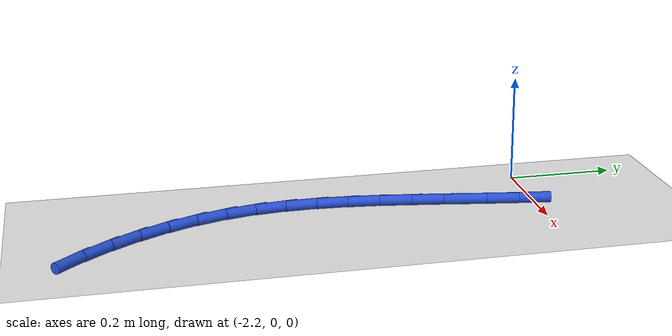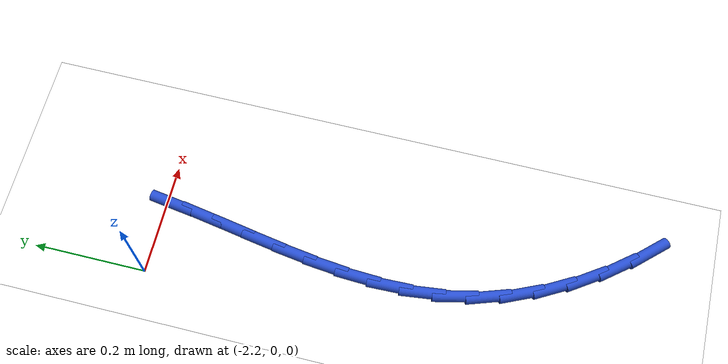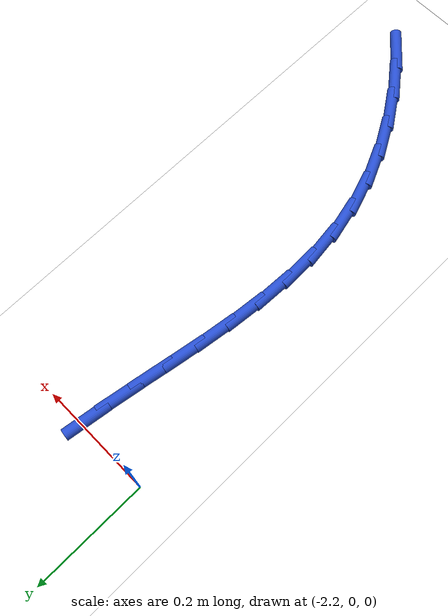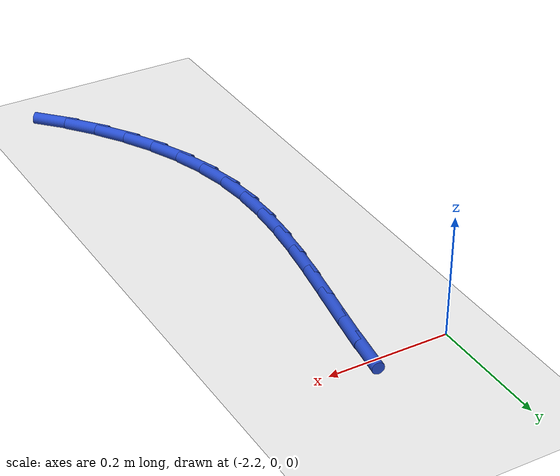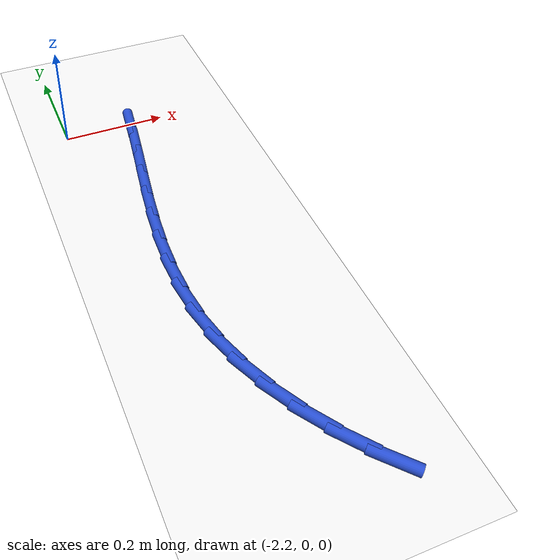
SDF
<sdf version="1.6">
 <world name="default">
  <model name="ground_plane">
   <static>1</static>
   <link name="link">
    <collision name="collision">
     <geometry><plane><normal>0 0 1</normal><size>100 100</size></plane></geometry>
     <surface><friction><ode><mu>100</mu><mu2>50</mu2></ode></friction></surface>
    </collision>
    <visual name="visual">
     <cast_shadows>0</cast_shadows>
     <geometry><plane><normal>0 0 1</normal><size>100 100</size></plane></geometry>
     <material>
      <script><uri>file://media/materials/scripts/gazebo.material</uri><name>Gazebo/WhiteGlow</name></script>
     </material>
    </visual>
   </link>
  </model>
  <model name="line">
   <link name="link_60">
    <pose>-2.0692747454241815 -0.010553672503859971 0.01 0 1.57 1.421763428143317</pose>
    <collision name="collision">
     <geometry><cylinder><radius>0.01</radius><length>0.08</length></cylinder></geometry>
    </collision>
    <visual name="visual">
     <material>
      <script><name>Gazebo/Blue</name><uri>file://media/materials/scripts/gazebo.material</uri></script>
     </material>
     <geometry><cylinder><radius>0.01</radius><length>0.08</length></cylinder></geometry>
    </visual>
   </link>
   <link name="link_61">
    <pose>-2.0781058791949687 -0.06937058229862705 0.01 0 1.57 1.4016909323857312</pose>
    <collision name="collision">
     <geometry><cylinder><radius>0.01</radius><length>0.08</length></cylinder></geometry>
    </collision>
    <visual name="visual">
     <material>
      <script><name>Gazebo/Blue</name><uri>file://media/materials/scripts/gazebo.material</uri></script>
     </material>
     <geometry><cylinder><radius>0.01</radius><length>0.08</length></cylinder></geometry>
    </visual>
   </link>
   <link name="link_62">
    <pose>-2.0881404227545044 -0.12814286068216074 0.01 0 1.57 1.3963773440387126</pose>
    <collision name="collision">
     <geometry><cylinder><radius>0.01</radius><length>0.08</length></cylinder></geometry>
    </collision>
    <visual name="visual">
     <material>
      <script><name>Gazebo/Blue</name><uri>file://media/materials/scripts/gazebo.material</uri></script>
     </material>
     <geometry><cylinder><radius>0.01</radius><length>0.08</length></cylinder></geometry>
    </visual>
   </link>
   <link name="link_63">
    <pose>-2.098472211657338 -0.1867764134649903 0.01 0 1.57 1.4058240153308528</pose>
    <collision name="collision">
     <geometry><cylinder><radius>0.01</radius><length>0.08</length></cylinder></geometry>
    </collision>
    <visual name="visual">
     <material>
      <script><name>Gazebo/Blue</name><uri>file://media/materials/scripts/gazebo.material</uri></script>
     </material>
     <geometry><cylinder><radius>0.01</radius><length>0.08</length></cylinder></geometry>
    </visual>
   </link>
   <link name="link_64">
    <pose>-2.108195081458019 -0.24517714645764252 0.01 0 1.57 1.4303925882408393</pose>
    <collision name="collision">
     <geometry><cylinder><radius>0.01</radius><length>0.08</length></cylinder></geometry>
    </collision>
    <visual name="visual">
     <material>
      <script><name>Gazebo/Blue</name><uri>file://media/materials/scripts/gazebo.material</uri></script>
     </material>
     <geometry><cylinder><radius>0.01</radius><length>0.08</length></cylinder></geometry>
    </visual>
   </link>
   <link name="link_65">
    <pose>-2.1164028677110958 -0.3032509654706466 0.01 0 1.57 1.4707626281073156</pose>
    <collision name="collision">
     <geometry><cylinder><radius>0.01</radius><length>0.08</length></cylinder></geometry>
    </collision>
    <visual name="visual">
     <material>
      <script><name>Gazebo/Blue</name><uri>file://media/materials/scripts/gazebo.material</uri></script>
     </material>
     <geometry><cylinder><radius>0.01</radius><length>0.08</length></cylinder></geometry>
    </visual>
   </link>
   <link name="link_66">
    <pose>-2.122189405971118 -0.36090377631453185 0.01 0 1.57 1.5277842913138713</pose>
    <collision name="collision">
     <geometry><cylinder><radius>0.01</radius><length>0.08</length></cylinder></geometry>
    </collision>
    <visual name="visual">
     <material>
      <script><name>Gazebo/Blue</name><uri>file://media/materials/scripts/gazebo.material</uri></script>
     </material>
     <geometry><cylinder><radius>0.01</radius><length>0.08</length></cylinder></geometry>
    </visual>
   </link>
   <link name="link_67">
    <pose>-2.1246485317926362 -0.41804148479982495 0.01 0 1.57 -1.5394162581486277</pose>
    <collision name="collision">
     <geometry><cylinder><radius>0.01</radius><length>0.08</length></cylinder></geometry>
    </collision>
    <visual name="visual">
     <material>
      <script><name>Gazebo/Blue</name><uri>file://media/materials/scripts/gazebo.material</uri></script>
     </material>
     <geometry><cylinder><radius>0.01</radius><length>0.08</length></cylinder></geometry>
    </visual>
   </link>
   <link name="link_68">
    <pose>-2.1228740807301976 -0.4745699967370553 0.01 0 1.57 -1.4475695876806087</pose>
    <collision name="collision">
     <geometry><cylinder><radius>0.01</radius><length>0.08</length></cylinder></geometry>
    </collision>
    <visual name="visual">
     <material>
      <script><name>Gazebo/Blue</name><uri>file://media/materials/scripts/gazebo.material</uri></script>
     </material>
     <geometry><cylinder><radius>0.01</radius><length>0.08</length></cylinder></geometry>
    </visual>
   </link>
   <link name="link_69">
    <pose>-2.1159598883383537 -0.5303952179367514 0.01 0 1.57 -1.341214992667459</pose>
    <collision name="collision">
     <geometry><cylinder><radius>0.01</radius><length>0.08</length></cylinder></geometry>
    </collision>
    <visual name="visual">
     <material>
      <script><name>Gazebo/Blue</name><uri>file://media/materials/scripts/gazebo.material</uri></script>
     </material>
     <geometry><cylinder><radius>0.01</radius><length>0.08</length></cylinder></geometry>
    </visual>
   </link>
   <link name="link_70">
    <pose>-2.103103348782379 -0.5854078034693816 0.01 0 1.57 -1.236158188837453</pose>
    <collision name="collision">
     <geometry><cylinder><radius>0.01</radius><length>0.08</length></cylinder></geometry>
    </collision>
    <visual name="visual">
     <material>
      <script><name>Gazebo/Blue</name><uri>file://media/materials/scripts/gazebo.material</uri></script>
     </material>
     <geometry><cylinder><radius>0.01</radius><length>0.08</length></cylinder></geometry>
    </visual>
   </link>
   <link name="link_71">
    <pose>-2.0843380274799452 -0.6393752681824331 0.01 0 1.57 -1.1392467403721571</pose>
    <collision name="collision">
     <geometry><cylinder><radius>0.01</radius><length>0.08</length></cylinder></geometry>
    </collision>
    <visual name="visual">
     <material>
      <script><name>Gazebo/Blue</name><uri>file://media/materials/scripts/gazebo.material</uri></script>
     </material>
     <geometry><cylinder><radius>0.01</radius><length>0.08</length></cylinder></geometry>
    </visual>
   </link>
   <link name="link_72">
    <pose>-2.06010188390514 -0.6920055731248935 0.01 0 1.57 -1.0498325044144379</pose>
    <collision name="collision">
     <geometry><cylinder><radius>0.01</radius><length>0.08</length></cylinder></geometry>
    </collision>
    <visual name="visual">
     <material>
      <script><name>Gazebo/Blue</name><uri>file://media/materials/scripts/gazebo.material</uri></script>
     </material>
     <geometry><cylinder><radius>0.01</radius><length>0.08</length></cylinder></geometry>
    </visual>
   </link>
   <link name="link_73">
    <pose>-2.0308355131793214 -0.7430062912025406 0.01 0 1.57 -0.9669279697634969</pose>
    <collision name="collision">
     <geometry><cylinder><radius>0.01</radius><length>0.08</length></cylinder></geometry>
    </collision>
    <visual name="visual">
     <material>
      <script><name>Gazebo/Blue</name><uri>file://media/materials/scripts/gazebo.material</uri></script>
     </material>
     <geometry><cylinder><radius>0.01</radius><length>0.08</length></cylinder></geometry>
    </visual>
   </link>
   <link name="link_74">
    <pose>-1.9969795104238481 -0.7920849953211525 0.01 0 1.57 -0.8894081349102257</pose>
    <collision name="collision">
     <geometry><cylinder><radius>0.01</radius><length>0.08</length></cylinder></geometry>
    </collision>
    <visual name="visual">
     <material>
      <script><name>Gazebo/Blue</name><uri>file://media/materials/scripts/gazebo.material</uri></script>
     </material>
     <geometry><cylinder><radius>0.01</radius><length>0.08</length></cylinder></geometry>
    </visual>
   </link>
   <link name="link_75">
    <pose>-1.9589744707600816 -0.838949258386506 0.01 0 1.57 -0.8161063711161537</pose>
    <collision name="collision">
     <geometry><cylinder><radius>0.01</radius><length>0.08</length></cylinder></geometry>
    </collision>
    <visual name="visual">
     <material>
      <script><name>Gazebo/Blue</name><uri>file://media/materials/scripts/gazebo.material</uri></script>
     </material>
     <geometry><cylinder><radius>0.01</radius><length>0.08</length></cylinder></geometry>
    </visual>
   </link>
  </model>
 </world>
</sdf>
